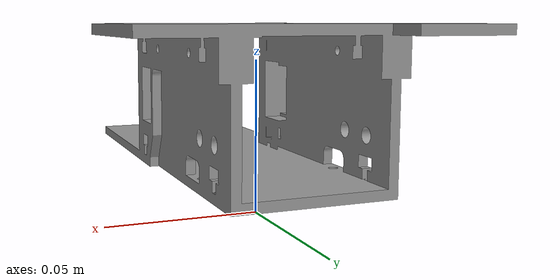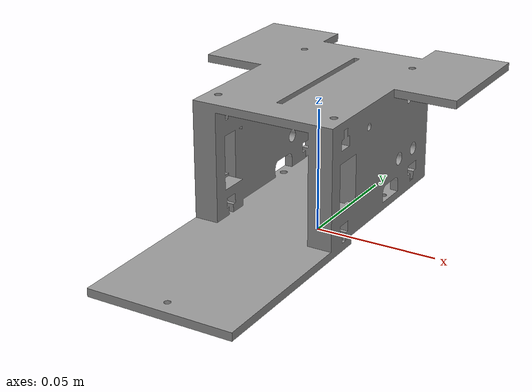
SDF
<?xml version="1.0" ?>
<sdf version="1.5">
  <model name="chassis_v2">
    <pose>0 0 0.0132 0 0 0</pose>
    <link name="link">
      <inertial>
        <mass>0.1</mass>
        <inertia>
          <ixx>0.0001</ixx>
          <ixy>0</ixy>
          <ixz>0</ixz>
          <iyy>0.0001</iyy>
          <iyz>0</iyz>
          <izz>0.0001</izz>
        </inertia>
      </inertial>
      <collision name="collision">
        <pose>0.0005 -0.00065 0 1.57079632679 0 0</pose>
        <geometry>
          <box>
            <size>0.051 0.0035 0.153</size>
          </box>
        </geometry>
      </collision>
      <visual name="visual">
        <pose>0 0 0.0 1.57079632679 0 0</pose>
        <geometry>
          <mesh>
            <uri>model://chassis_v2/meshes/chassis_v2.dae</uri>
            <scale>0.001 0.001 0.001</scale>
          </mesh>
        </geometry>
        <material>
          <script>
            <uri>file://media/materials/scripts/gazebo.material</uri>
            <name>Gazebo/Grey</name>
          </script>
        </material>
      </visual>
    </link>
  </model>
</sdf>
